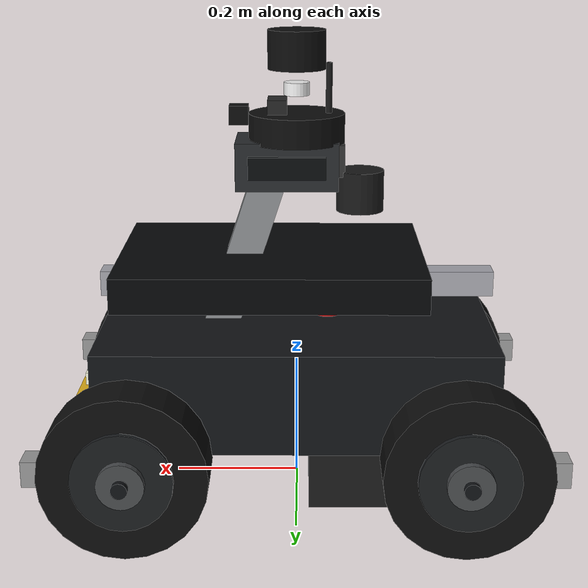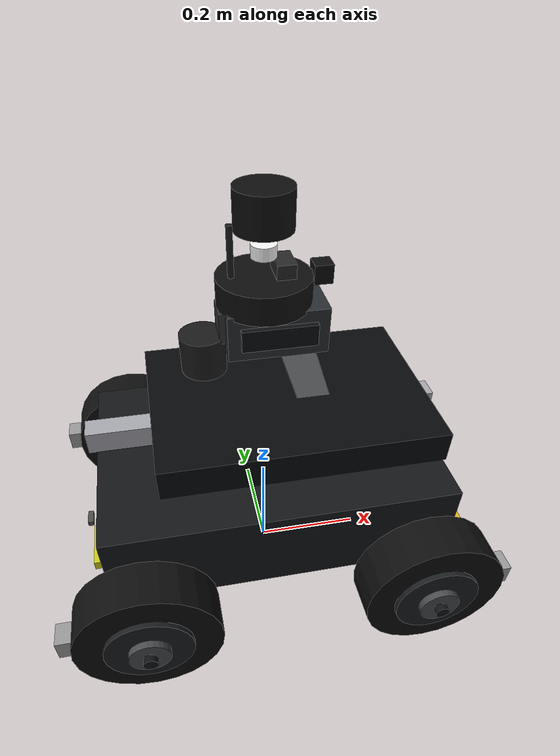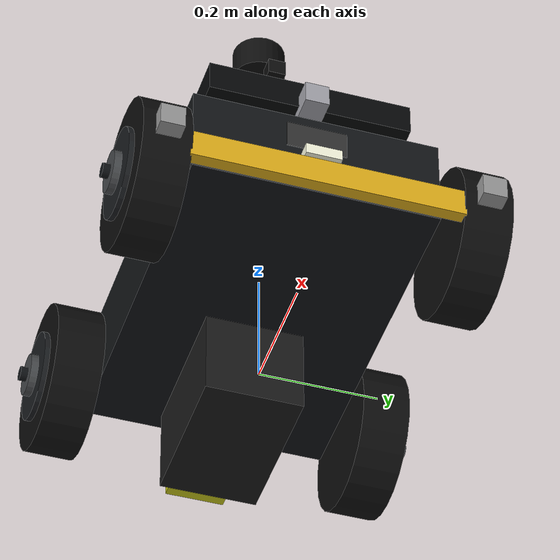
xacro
<?xml version="1.0"?>
<robot name="niihan" xmlns:xacro="http://www.ros.org/wiki/xacro" xmlns:gz="http://gazebosim.org/schema">

  <xacro:arg name="minimal_sensors" default="false"/>
  <xacro:arg name="gnss_mount_x" default="0.0"/>
  <xacro:arg name="gnss_mount_y" default="0.0"/>
  <xacro:arg name="gnss_mount_z" default="0.06"/>

  <xacro:include filename="$(find niihan_description)/urdf/niihan_properties.xacro"/>
  <xacro:include filename="$(find niihan_description)/urdf/niihan_macros.xacro"/>
  <xacro:include filename="$(find niihan_description)/urdf/niihan_chassis.xacro"/>
  <xacro:include filename="$(find niihan_description)/urdf/niihan_mast.xacro"/>
  <xacro:include filename="$(find niihan_description)/urdf/niihan_sensors_mast.xacro"/>
  <xacro:include filename="$(find niihan_description)/urdf/niihan_sensors_chassis.xacro"/>

  <xacro:niihan_mast parent="base_link"/>

  <gazebo>
    <plugin filename="gz-sim-diff-drive-system" name="gz::sim::systems::DiffDrive">
      <left_joint>front_left_wheel_joint</left_joint>
      <left_joint>rear_left_wheel_joint</left_joint>
      <right_joint>front_right_wheel_joint</right_joint>
      <right_joint>rear_right_wheel_joint</right_joint>
      <wheel_separation>${track_width}</wheel_separation>
      <wheel_radius>${wheel_radius}</wheel_radius>
      <max_linear_acceleration>2.0</max_linear_acceleration>
      <min_linear_acceleration>-2.0</min_linear_acceleration>
      <max_angular_acceleration>3.0</max_angular_acceleration>
      <min_angular_acceleration>-3.0</min_angular_acceleration>
      <max_linear_velocity>1.2</max_linear_velocity>
      <min_linear_velocity>-1.5</min_linear_velocity>
      <max_angular_velocity>2.5</max_angular_velocity>
      <min_angular_velocity>-2.5</min_angular_velocity>
      <topic>/niihan/gazebo_cmd_vel</topic>
      <odom_topic>/odom</odom_topic>
      <tf_topic>/tf</tf_topic>
      <frame_id>odom</frame_id>
      <child_frame_id>base_footprint</child_frame_id>
      <odom_publish_frequency>50</odom_publish_frequency>
    </plugin>

    <!-- Evaluation only: world pose, never bridged into the navigation TF tree. -->
    <plugin filename="gz-sim-odometry-publisher-system" name="gz::sim::systems::OdometryPublisher">
      <odom_frame>world</odom_frame><robot_base_frame>ground_truth_base</robot_base_frame>
      <odom_topic>/niihan/ground_truth</odom_topic><tf_topic>/niihan/evaluation_tf</tf_topic>
      <dimensions>3</dimensions><odom_publish_frequency>20</odom_publish_frequency>
    </plugin>

    <!-- Joint state publisher so wheel angles show up on /joint_states -->
    <plugin filename="gz-sim-joint-state-publisher-system" name="gz::sim::systems::JointStatePublisher">
      <topic>/joint_states</topic>
      <joint_name>front_left_wheel_joint</joint_name>
      <joint_name>front_right_wheel_joint</joint_name>
      <joint_name>rear_left_wheel_joint</joint_name>
      <joint_name>rear_right_wheel_joint</joint_name>
      <joint_name>front_left_suspension_joint</joint_name>
      <joint_name>front_right_suspension_joint</joint_name>
      <joint_name>rear_left_suspension_joint</joint_name>
      <joint_name>rear_right_suspension_joint</joint_name>
    </plugin>
  </gazebo>

</robot>

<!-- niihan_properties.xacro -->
<robot xmlns:xacro="http://www.ros.org/wiki/xacro">

  <!-- Overall envelope -->
  <xacro:property name="chassis_length" value="0.700"/> <!-- 700mm -->
  <xacro:property name="chassis_width" value="0.500"/> <!-- 500mm envelope -->
  <xacro:property name="chassis_height" value="0.220"/>
  <xacro:property name="ground_clearance" value="0.200"/> <!-- 200mm -->
  <xacro:property name="wheelbase" value="0.500"/> <!-- 500mm -->
  <xacro:property name="track_width" value="0.525"/> <!-- 525mm -->

  <!-- Suspension -->
  <xacro:property name="suspension_arm_length" value="0.150"/>
  <xacro:property name="suspension_arm_width" value="0.040"/>
  <xacro:property name="suspension_arm_mass" value="1.0"/>

  <!-- Wheels -->
  <xacro:property name="wheel_diameter" value="0.250"/> <!-- Placeholder: confirm with real measurement before build -->
  <xacro:property name="wheel_radius" value="${wheel_diameter/2.0}"/>
  <xacro:property name="wheel_width" value="0.080"/> <!-- Placeholder: confirm with real measurement before build -->
  <xacro:property name="wheel_mass" value="3.5"/>
  <xacro:property name="wheel_effort" value="30.0"/> <!-- N*m, per-wheel drive motor effort limit, placeholder pending motor sign-off -->
  <xacro:property name="wheel_velocity" value="10.0"/> <!-- rad/s, per-wheel max angular velocity, placeholder pending motor sign-off -->

  <!-- Chassis mass distribution -->
  <xacro:property name="chassis_mass" value="10.0"/> <!-- Placeholder residual mass, adjusted for large items below -->
  <xacro:property name="battery_mass" value="14.0"/> <!-- ~13-15kg for 1280Wh LiFePO4 pack -->
  <xacro:property name="battery_size_x" value="0.260"/>
  <xacro:property name="battery_size_y" value="0.165"/>
  <xacro:property name="battery_size_z" value="0.210"/>
  <xacro:property name="front_compute_mass" value="1.5"/> <!-- Jetson, Pi, MCU, IMU, modems -->
  <xacro:property name="power_control_mass" value="2.0"/> <!-- ZLAC drivers, PDU, DC/DC -->

  <!-- Frame -->
  <xacro:property name="extrusion_size" value="0.040"/> <!-- 40x40mm aluminium extrusion -->

  <!-- Sensor mast -->
  <xacro:property name="mast_height" value="0.350"/> <!-- 350mm -->
  <xacro:property name="mast_radius" value="0.030"/>
  <xacro:property name="mast_mass" value="1.5"/>

  <!-- GNSS/RTK: configurable fix-quality / covariance parameter used by the GNSS sensor plugin's gaussian_noise field -->
  <xacro:property name="rtk_fix_std_dev" value="0.02"/> <!-- meters, position std dev in good RTK-fixed state; increase to simulate degraded/lost RTK -->

  <!-- Colors -->
  <material name="niihan_chassis_dark"><color rgba="0.15 0.15 0.16 1.0"/></material>
  <material name="niihan_metal"><color rgba="0.6 0.6 0.65 1.0"/></material>
  <material name="niihan_wheel_black"><color rgba="0.08 0.08 0.08 1.0"/></material>
  <material name="niihan_accent"><color rgba="0.85 0.35 0.05 1.0"/></material>

</robot>

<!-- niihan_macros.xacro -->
<robot xmlns:xacro="http://www.ros.org/wiki/xacro">

  <xacro:macro name="box_inertia" params="mass x y z ox:=0 oy:=0 oz:=0">
    <inertial>
      <origin xyz="${ox} ${oy} ${oz}" rpy="0 0 0"/>
      <mass value="${mass}"/>
      <inertia
        ixx="${(1/12.0)*mass*(y*y+z*z)}" ixy="0.0" ixz="0.0"
        iyy="${(1/12.0)*mass*(x*x+z*z)}" iyz="0.0"
        izz="${(1/12.0)*mass*(x*x+y*y)}"/>
    </inertial>
  </xacro:macro>

  <xacro:macro name="cylinder_inertia" params="mass r h">
    <inertial>
      <mass value="${mass}"/>
      <inertia
        ixx="${(1/12.0)*mass*(3*r*r+h*h)}" ixy="0.0" ixz="0.0"
        iyy="${(1/12.0)*mass*(3*r*r+h*h)}" iyz="0.0"
        izz="${(0.5)*mass*r*r}"/>
    </inertial>
  </xacro:macro>

  <xacro:macro name="sphere_inertia" params="mass r">
    <inertial>
      <mass value="${mass}"/>
      <inertia
        ixx="${(2/5.0)*mass*r*r}" ixy="0.0" ixz="0.0"
        iyy="${(2/5.0)*mass*r*r}" iyz="0.0"
        izz="${(2/5.0)*mass*r*r}"/>
    </inertial>
  </xacro:macro>

</robot>

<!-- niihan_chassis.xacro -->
<robot xmlns:xacro="http://www.ros.org/wiki/xacro">

  <link name="base_footprint"/>

  <joint name="base_footprint_joint" type="fixed">
    <parent link="base_footprint"/>
    <child link="base_link"/>
    <origin xyz="0 0 ${wheel_radius}" rpy="0 0 0"/>
  </joint>

  <link name="base_link">
    <visual>
      <origin xyz="0 0 ${ground_clearance/2 - 0.025}" rpy="0 0 0"/>
      <geometry>
        <box size="${chassis_length*0.88} ${chassis_width*0.82} ${chassis_height*0.72}"/>
      </geometry>
      <material name="niihan_chassis_dark">
        <color rgba="0.07 0.08 0.09 1.0"/>
      </material>
    </visual>
    <collision>
      <origin xyz="0 0 ${ground_clearance/2 - 0.025}" rpy="0 0 0"/>
      <geometry>
        <box size="${chassis_length*0.88} ${chassis_width*0.82} ${chassis_height*0.72}"/>
      </geometry>
    </collision>
    <xacro:box_inertia mass="${chassis_mass}" x="${chassis_length}" y="${chassis_width}" z="${chassis_height}" ox="0" oy="0" oz="${ground_clearance/2 - 0.025}"/>
  </link>

  <gazebo reference="base_link">
    <material>Gazebo/DarkGrey</material>
  </gazebo>

  <link name="upper_deck">
    <visual>
      <origin xyz="0.02 0 0" rpy="0 0 0"/>
      <geometry><box size="0.48 0.34 0.055"/></geometry>
      <material name="upper_deck_black"><color rgba="0.025 0.03 0.035 1.0"/></material>
    </visual>
    <collision>
      <origin xyz="0.02 0 0" rpy="0 0 0"/>
      <geometry><box size="0.48 0.34 0.055"/></geometry>
    </collision>
    <xacro:box_inertia mass="1.0" x="0.48" y="0.34" z="0.055"/>
  </link>
  <joint name="upper_deck_joint" type="fixed">
    <parent link="base_link"/>
    <child link="upper_deck"/>
    <origin xyz="0.02 0 ${ground_clearance + 0.035}" rpy="0 0 0"/>
  </joint>

  <!-- 40x40mm aluminium extrusion frame rails (collision-relevant structural detail) -->
  <xacro:macro name="extrusion_rail" params="name x y z len_axis">
    <link name="${name}">
      <visual>
        <geometry>
          <box size="${len_axis=='x' and chassis_length*0.9 or extrusion_size} ${len_axis=='y' and chassis_width*0.9 or extrusion_size} ${extrusion_size}"/>
        </geometry>
        <material name="${name}_extrusion_silver">
          <color rgba="0.65 0.65 0.68 1.0"/>
        </material>
      </visual>
      <collision>
        <geometry>
          <box size="${len_axis=='x' and chassis_length*0.9 or extrusion_size} ${len_axis=='y' and chassis_width*0.9 or extrusion_size} ${extrusion_size}"/>
        </geometry>
      </collision>
      <xacro:box_inertia mass="0.3" x="${extrusion_size}" y="${extrusion_size}" z="${extrusion_size}"/>
    </link>
    <joint name="${name}_joint" type="fixed">
      <parent link="base_link"/>
      <child link="${name}"/>
      <origin xyz="${x} ${y} ${z}" rpy="0 0 0"/>
    </joint>
  </xacro:macro>

  <xacro:extrusion_rail name="frame_rail_front" x="0" y="0" z="${ground_clearance + 0.01}" len_axis="x"/>

  <xacro:macro name="niihan_suspension" params="prefix side_reflect front_reflect x_off y_off">
    <link name="${prefix}_arm">
      <visual>
        <origin xyz="${-front_reflect * suspension_arm_length/2} 0 0" rpy="0 0 0"/>
        <geometry>
          <box size="${suspension_arm_length} ${suspension_arm_width} ${suspension_arm_width}"/>
        </geometry>
        <material name="${prefix}_metal"><color rgba="0.6 0.6 0.6 1.0"/></material>
      </visual>
      <collision>
        <origin xyz="${-front_reflect * suspension_arm_length/2} 0 0" rpy="0 0 0"/>
        <geometry>
          <box size="${suspension_arm_length} ${suspension_arm_width} ${suspension_arm_width}"/>
        </geometry>
      </collision>
      <xacro:box_inertia mass="${suspension_arm_mass}" x="${suspension_arm_length}" y="${suspension_arm_width}" z="${suspension_arm_width}" ox="${-front_reflect * suspension_arm_length/2}" oy="0" oz="0"/>
    </link>
    <joint name="${prefix}_suspension_joint" type="revolute">
      <parent link="base_link"/>
      <child link="${prefix}_arm"/>
      <origin xyz="${x_off + front_reflect * suspension_arm_length} ${y_off} 0" rpy="0 0 0"/>
      <axis xyz="0 1 0"/>
      <limit lower="-0.4" upper="0.4" effort="100.0" velocity="2.0"/>
      <dynamics damping="50.0" friction="0.5" spring_stiffness="2000.0" spring_reference="0.0"/>
    </joint>
  </xacro:macro>

  <xacro:niihan_suspension prefix="front_left" side_reflect="1" front_reflect="1" x_off="${wheelbase/2}" y_off="${track_width/2}"/>
  <xacro:niihan_suspension prefix="front_right" side_reflect="-1" front_reflect="1" x_off="${wheelbase/2}" y_off="${-track_width/2}"/>
  <xacro:niihan_suspension prefix="rear_left" side_reflect="1" front_reflect="-1" x_off="${-wheelbase/2}" y_off="${track_width/2}"/>
  <xacro:niihan_suspension prefix="rear_right" side_reflect="-1" front_reflect="-1" x_off="${-wheelbase/2}" y_off="${-track_width/2}"/>

  <xacro:macro name="niihan_wheel" params="name parent x_off y_off hub_y hub_offset mu1:=1.0 mu2:=1.0">
    <link name="${name}">
      <visual>
        <origin xyz="0 0 0" rpy="${pi/2} 0 0"/>
        <geometry><cylinder radius="${wheel_radius}" length="${wheel_width}"/></geometry>
        <material name="${name}_rubber_black"><color rgba="0.05 0.05 0.05 1.0"/></material>
      </visual>
      <collision>
        <origin xyz="0 0 0" rpy="${pi/2} 0 0"/>
        <geometry><cylinder radius="${wheel_radius}" length="${wheel_width}"/></geometry>
      </collision>
      <visual>
        <origin xyz="0 ${hub_y} 0" rpy="${pi/2} 0 0"/>
        <geometry><cylinder radius="0.075" length="0.018"/></geometry>
        <material name="${name}_hub_outer"><color rgba="0.10 0.11 0.12 1.0"/></material>
      </visual>
      <visual>
        <origin xyz="0 ${hub_y + hub_offset} 0" rpy="${pi/2} 0 0"/>
        <geometry><cylinder radius="0.035" length="0.022"/></geometry>
        <material name="${name}_hub_center"><color rgba="0.28 0.29 0.30 1.0"/></material>
      </visual>
      <visual>
        <origin xyz="0 ${hub_y + 2*hub_offset} 0" rpy="${pi/2} 0 0"/>
        <geometry><cylinder radius="0.012" length="0.025"/></geometry>
        <material name="${name}_hub_cap"><color rgba="0.06 0.07 0.08 1.0"/></material>
      </visual>
      <xacro:cylinder_inertia mass="${wheel_mass}" r="${wheel_radius}" h="${wheel_width}"/>
    </link>
    <joint name="${name}_joint" type="continuous">
      <parent link="${parent}"/>
      <child link="${name}"/>
      <origin xyz="${x_off} ${y_off} 0" rpy="0 0 0"/>
      <axis xyz="0 1 0"/>
      <dynamics damping="0.2" friction="0.1"/>
      <limit effort="${wheel_effort}" velocity="${wheel_velocity}"/>
    </joint>
    <gazebo reference="${name}">
      <material>Gazebo/Black</material>
      <mu1>${mu1}</mu1>
      <mu2>${mu2}</mu2>
      <fdir1>1 0 0</fdir1>
      <kp>10000000.0</kp>
      <kd>1.0</kd>
      <minDepth>0.001</minDepth>
    </gazebo>
  </xacro:macro>

  <xacro:niihan_wheel name="front_left_wheel"  parent="front_left_arm"  x_off="${-suspension_arm_length}" y_off="0" hub_y="${wheel_width/2}"  hub_offset="0.01" mu1="0.8" mu2="0.8"/>
  <xacro:niihan_wheel name="front_right_wheel" parent="front_right_arm" x_off="${-suspension_arm_length}" y_off="0" hub_y="${-wheel_width/2}" hub_offset="-0.01" mu1="0.8" mu2="0.8"/>
  <xacro:niihan_wheel name="rear_left_wheel"   parent="rear_left_arm"   x_off="${suspension_arm_length}"  y_off="0" hub_y="${wheel_width/2}"  hub_offset="0.01" mu1="0.8" mu2="0.8"/>
  <xacro:niihan_wheel name="rear_right_wheel"  parent="rear_right_arm"  x_off="${suspension_arm_length}"  y_off="0" hub_y="${-wheel_width/2}" hub_offset="-0.01" mu1="0.8" mu2="0.8"/>

  <link name="front_compute_box">
    <visual><geometry><box size="0.12 0.10 0.05"/></geometry><material name="compute_box_mat"><color rgba="0.2 0.2 0.2 1.0"/></material></visual>
    <xacro:box_inertia mass="${front_compute_mass}" x="0.12" y="0.10" z="0.05"/>
  </link>
  <joint name="front_compute_joint" type="fixed">
    <parent link="base_link"/>
    <child link="front_compute_box"/>
    <origin xyz="${chassis_length/2 - 0.1} 0 ${chassis_height/2}" rpy="0 0 0"/>
  </joint>

  <link name="power_control_box">
    <visual><geometry><box size="0.15 0.12 0.06"/></geometry><material name="power_box_mat"><color rgba="0.3 0.3 0.3 1.0"/></material></visual>
    <xacro:box_inertia mass="${power_control_mass}" x="0.15" y="0.12" z="0.06"/>
  </link>
  <joint name="power_control_joint" type="fixed">
    <parent link="base_link"/>
    <child link="power_control_box"/>
    <origin xyz="-0.05 0 ${chassis_height/2}" rpy="0 0 0"/>
  </joint>

  <link name="estop_button">
    <visual><geometry><cylinder radius="0.02" length="0.02"/></geometry><material name="estop_red"><color rgba="0.8 0.1 0.1 1.0"/></material></visual>
  </link>
  <joint name="estop_joint" type="fixed">
    <parent link="power_control_box"/>
    <child link="estop_button"/>
    <origin xyz="0 0 0.04" rpy="0 0 0"/>
  </joint>

  <link name="battery_box">
    <visual><geometry><box size="${battery_size_x} ${battery_size_y} ${battery_size_z}"/></geometry><material name="battery_mat"><color rgba="0.1 0.1 0.1 1.0"/></material></visual>
    <xacro:box_inertia mass="${battery_mass}" x="${battery_size_x}" y="${battery_size_y}" z="${battery_size_z}"/>
  </link>
  <joint name="battery_joint" type="fixed">
    <parent link="base_link"/>
    <child link="battery_box"/>
    <!-- Place battery low and rear -->
    <origin xyz="-0.15 0 -0.05" rpy="0 0 0"/>
  </joint>

  <link name="access_panel">
    <visual><geometry><box size="0.30 0.20 0.01"/></geometry><material name="panel_mat"><color rgba="0.4 0.4 0.4 1.0"/></material></visual>
  </link>
  <joint name="access_panel_joint" type="fixed">
    <parent link="base_link"/>
    <child link="access_panel"/>
    <origin xyz="0 0 ${chassis_height/2 + 0.005}" rpy="0 0 0"/>
  </joint>

  <link name="rear_dock_contacts">
    <visual><geometry><box size="0.02 0.1 0.02"/></geometry><material name="contacts_mat"><color rgba="0.8 0.8 0.1 1.0"/></material></visual>
  </link>
  <joint name="rear_dock_joint" type="fixed">
    <parent link="base_link"/>
    <child link="rear_dock_contacts"/>
    <origin xyz="${-chassis_length/2} 0 ${-chassis_height/2 + 0.02}" rpy="0 0 0"/>
  </joint>

</robot>

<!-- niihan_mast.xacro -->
<robot xmlns:xacro="http://www.ros.org/wiki/xacro">

  <xacro:macro name="niihan_mast" params="parent">

    <joint name="mast_joint" type="fixed">
      <parent link="${parent}"/>
      <child link="mast_link"/>
      <origin xyz="0 0 ${chassis_height/2}" rpy="0 0 0"/>
    </joint>

    <link name="mast_link">
      <visual>
        <origin xyz="0.075 0 ${mast_height/2}" rpy="0 -0.32 0"/>
        <geometry>
          <box size="0.055 0.055 ${mast_height}"/>
        </geometry>
        <material name="mast_dark_grey">
          <color rgba="0.55 0.56 0.57 1.0"/>
        </material>
      </visual>
      <collision>
        <origin xyz="0.075 0 ${mast_height/2}" rpy="0 -0.32 0"/>
        <geometry>
          <box size="0.055 0.055 ${mast_height}"/>
        </geometry>
      </collision>
      <xacro:box_inertia mass="0.8" x="0.055" y="0.055" z="${mast_height}"/>
    </link>

    <gazebo reference="mast_link">
      <material>Gazebo/DarkGrey</material>
    </gazebo>

    <!-- Mount frame at mast top: the single forward camera and LiDAR share the head plate -->
    <joint name="mast_head_joint" type="fixed">
      <parent link="mast_link"/>
      <child link="mast_head_link"/>
      <origin xyz="0 0 ${mast_height}" rpy="0 0 0"/>
    </joint>

    <link name="mast_head_link">
      <visual>
        <geometry>
          <cylinder radius="0.075" length="0.045"/>
        </geometry>
        <material name="mast_head_black">
          <color rgba="0.05 0.05 0.05 1.0"/>
        </material>
      </visual>
      <visual>
        <origin xyz="0.015 0 -0.055" rpy="0 0 0"/>
        <geometry><box size="0.16 0.10 0.075"/></geometry>
        <material name="mast_camera_bar"><color rgba="0.16 0.17 0.18 1.0"/></material>
      </visual>
      <visual>
        <origin xyz="0.015 0 -0.055" rpy="0 0 0"/>
        <geometry><box size="0.12 0.12 0.035"/></geometry>
        <material name="mast_camera_face"><color rgba="0.04 0.05 0.055 1.0"/></material>
      </visual>
      <collision>
        <geometry>
          <cylinder radius="0.06" length="0.02"/>
        </geometry>
      </collision>
      <xacro:cylinder_inertia mass="0.3" r="0.06" h="0.02"/>
    </link>

    <gazebo reference="mast_head_link">
      <material>Gazebo/Black</material>
    </gazebo>

  </xacro:macro>

</robot>

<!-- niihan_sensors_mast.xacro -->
<robot xmlns:xacro="http://www.ros.org/wiki/xacro" xmlns:gz="http://gazebosim.org/schema">

  <!-- ============ Single forward RGB camera ============ -->
  <xacro:macro name="niihan_ring_camera" params="suffix yaw_deg">
    <link name="camera_${suffix}_link">
      <visual>
        <geometry><box size="0.03 0.03 0.03"/></geometry>
        <material name="camera_${suffix}_black"><color rgba="0.05 0.05 0.05 1"/></material>
      </visual>
      <collision><geometry><box size="0.03 0.03 0.03"/></geometry></collision>
      <xacro:box_inertia mass="0.05" x="0.03" y="0.03" z="0.03"/>
    </link>
    <joint name="camera_${suffix}_joint" type="fixed">
      <parent link="mast_head_link"/>
      <child link="camera_${suffix}_link"/>
      <origin xyz="0.09 0 0.02" rpy="0 0 ${yaw_deg * pi / 180.0}"/>
    </joint>
    <xacro:if value="${suffix == 'front' or xacro.arg('minimal_sensors') == 'false'}">
<gazebo reference="camera_${suffix}_link">
      <sensor type="camera" name="camera_${suffix}_sensor">
        <pose>0 0 0 0 0 0</pose>
        <always_on>1</always_on>
        <update_rate>15.0</update_rate>
        <topic>/niihan/sensors/panoramic/${suffix}/image_raw</topic>
        <gz:frame_id>camera_${suffix}_link</gz:frame_id>
        <camera name="${suffix}">
          <horizontal_fov>1.57</horizontal_fov>
          <image><width>640</width><height>480</height><format>R8G8B8</format></image>
          <clip><near>0.05</near><far>50</far></clip>
        </camera>
      </sensor>
    </gazebo>
</xacro:if>
  </xacro:macro>

  <xacro:niihan_ring_camera suffix="front" yaw_deg="0"/>
  <link name="camera_front_optical_frame"/>
  <joint name="camera_front_optical_joint" type="fixed">
    <parent link="camera_front_link"/><child link="camera_front_optical_frame"/>
    <origin xyz="0 0 0" rpy="-${pi/2} 0 -${pi/2}"/>
  </joint>

  <!-- ============ 3D 360 LiDAR (SLAM/localisation + obstacle detection) ============ -->
  <link name="mast_lidar_link">
    <visual><geometry><cylinder radius="0.045" length="0.06"/></geometry>
      <material name="lidar_link_black"><color rgba="0.05 0.05 0.05 1"/></material></visual>
    <collision><geometry><cylinder radius="0.045" length="0.06"/></geometry></collision>
    <xacro:cylinder_inertia mass="0.25" r="0.045" h="0.06"/>
  </link>
  <joint name="mast_lidar_joint" type="fixed">
    <parent link="mast_head_link"/>
    <child link="mast_lidar_link"/>
    <origin xyz="0 0 0.12" rpy="0 0 0"/>
  </joint>
  <xacro:unless value="$(arg minimal_sensors)">
<gazebo reference="mast_lidar_link">
    <sensor type="gpu_lidar" name="lidar_3d_sensor">
      <always_on>1</always_on>
      <update_rate>10.0</update_rate>
      <topic>/niihan/sensors/lidar</topic>
      <gz:frame_id>mast_lidar_link</gz:frame_id>
      <lidar>
        <scan>
          <horizontal><samples>360</samples><resolution>1</resolution><min_angle>-3.14159</min_angle><max_angle>3.14159</max_angle></horizontal>
          <vertical><samples>64</samples><resolution>1</resolution><min_angle>-0.12217</min_angle><max_angle>0.90757</max_angle></vertical>
        </scan>
        <range><min>0.2</min><max>60.0</max><resolution>0.01</resolution></range>
        <noise>
          <type>gaussian</type>
          <mean>0.0</mean>
          <stddev>0.01</stddev>
        </noise>
      </lidar>
    </sensor>
  </gazebo>
</xacro:unless>

  <!-- ============ REAR SENSOR CLUSTER ============ -->
  <link name="antenna_link">
    <visual>
      <geometry><cylinder radius="0.005" length="0.2"/></geometry>
      <material name="antenna_mat"><color rgba="0.1 0.1 0.1 1.0"/></material>
    </visual>
  </link>
  <joint name="antenna_joint" type="fixed">
    <parent link="mast_link"/>
    <child link="antenna_link"/>
    <origin xyz="-0.05 0 ${mast_height}" rpy="0 0 0"/>
  </joint>

  <link name="speaker_link">
    <visual>
      <geometry><box size="0.05 0.05 0.05"/></geometry>
      <material name="speaker_mat"><color rgba="0.2 0.2 0.2 1.0"/></material>
    </visual>
  </link>
  <joint name="speaker_joint" type="fixed">
    <parent link="mast_link"/>
    <child link="speaker_link"/>
    <origin xyz="-0.05 0 ${mast_height - 0.05}" rpy="0 0 0"/>
  </joint>

  <link name="unitree_l2_link">
    <visual>
      <geometry><cylinder radius="0.0375" length="0.065"/></geometry>
      <material name="unitree_mat"><color rgba="0.1 0.1 0.1 1.0"/></material>
    </visual>
    <collision>
      <geometry><cylinder radius="0.0375" length="0.065"/></geometry>
    </collision>
    <xacro:cylinder_inertia mass="0.23" r="0.0375" h="0.065"/>
  </link>
  <joint name="unitree_l2_joint" type="fixed">
    <parent link="mast_link"/>
    <child link="unitree_l2_link"/>
    <origin xyz="-0.1 0 ${mast_height - 0.1}" rpy="0 0 0"/>
  </joint>
  <gazebo reference="unitree_l2_link">
    <sensor type="gpu_lidar" name="unitree_l2_sensor">
      <always_on>1</always_on>
      <update_rate>10.0</update_rate>
      <topic>/niihan/sensors/unitree_lidar</topic>
      <gz:frame_id>unitree_l2_link</gz:frame_id>
      <lidar>
        <scan>
          <horizontal>
            <samples>${360 if xacro.arg('minimal_sensors') == 'true' else 560}</samples>
            <resolution>1</resolution>
            <min_angle>-3.14159</min_angle>
            <max_angle>3.14159</max_angle>
          </horizontal>
          <vertical>
            <samples>${32 if xacro.arg('minimal_sensors') == 'true' else 140}</samples>
            <resolution>1</resolution>
            <min_angle>-0.12217</min_angle>
            <max_angle>1.5708</max_angle>
          </vertical>
        </scan>
        <range><min>0.05</min><max>30.0</max><resolution>0.0045</resolution></range>
      </lidar>
    </sensor>
  </gazebo>

</robot>

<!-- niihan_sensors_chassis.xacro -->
<robot xmlns:xacro="http://www.ros.org/wiki/xacro" xmlns:gz="http://gazebosim.org/schema">

  <!-- GNSS + RTK: publishes sensor_msgs/NavSatFix -->
  <link name="gnss_link">
    <inertial>
      <mass value="0.05"/>
      <origin xyz="0 0 0" rpy="0 0 0"/>
      <inertia ixx="0.00001" iyy="0.00001" izz="0.00001" ixy="0" ixz="0" iyz="0"/>
    </inertial>
    <visual>
      <geometry><cylinder radius="0.02" length="0.02"/></geometry>
      <material name="niihan_gnss_white"><color rgba="0.95 0.95 0.95 1"/></material>
    </visual>
    <collision>
      <geometry><cylinder radius="0.02" length="0.02"/></geometry>
    </collision>
  </link>
  <joint name="gnss_joint" type="fixed">
    <parent link="mast_head_link"/>
    <child link="gnss_link"/>
    <origin xyz="$(arg gnss_mount_x) $(arg gnss_mount_y) $(arg gnss_mount_z)" rpy="0 0 0"/>
  </joint>
  <!-- Antenna is present in the minimal L2 + single-camera profile too. -->
<gazebo reference="gnss_link">
    <sensor name="gnss_sensor" type="navsat">
      <always_on>true</always_on>
      <update_rate>10</update_rate>
      <topic>/niihan/gnss/fix</topic>
      <gz:frame_id>gnss_link</gz:frame_id>
    </sensor>
  </gazebo>

  <!-- 2D LiDAR: publishes sensor_msgs/LaserScan on /scan for navigation/obstacle detection -->
  <link name="chassis_lidar_link">
    <inertial>
      <mass value="0.1"/>
      <origin xyz="0 0 0" rpy="0 0 0"/>
      <inertia ixx="0.0001" iyy="0.0001" izz="0.0001" ixy="0" ixz="0" iyz="0"/>
    </inertial>
    <visual>
      <geometry><cylinder radius="0.04" length="0.04"/></geometry>
      <material name="niihan_lidar_black"><color rgba="0.1 0.1 0.1 1"/></material>
    </visual>
    <collision>
      <geometry><cylinder radius="0.04" length="0.04"/></geometry>
    </collision>
  </link>
  <joint name="lidar_joint" type="fixed">
    <parent link="base_link"/>
    <child link="chassis_lidar_link"/>
    <origin xyz="0 0 0.22" rpy="0 0 0"/>
  </joint>
  <xacro:unless value="$(arg minimal_sensors)">
<gazebo reference="chassis_lidar_link">
    <sensor name="lidar_sensor" type="gpu_lidar">
      <always_on>true</always_on>
      <update_rate>10</update_rate>
      <visualize>false</visualize>
      <topic>/scan</topic>
      <gz:frame_id>chassis_lidar_link</gz:frame_id>
      <lidar>
        <scan>
          <horizontal>
            <samples>360</samples>
            <resolution>1</resolution>
            <min_angle>-3.14159</min_angle>
            <max_angle>3.14159</max_angle>
          </horizontal>
        </scan>
        <range><min>0.12</min><max>12.0</max><resolution>0.01</resolution></range>
      </lidar>
    </sensor>
  </gazebo>
</xacro:unless>

  <!-- IMU -->
  <link name="imu_link">
    <inertial>
      <mass value="0.03"/>
      <origin xyz="0 0 0" rpy="0 0 0"/>
      <inertia ixx="0.000005" iyy="0.000005" izz="0.000005" ixy="0" ixz="0" iyz="0"/>
    </inertial>
    <visual>
      <geometry><box size="0.02 0.02 0.01"/></geometry>
      <material name="niihan_imu_black"><color rgba="0.1 0.1 0.1 1"/></material>
    </visual>
    <collision>
      <geometry><box size="0.02 0.02 0.01"/></geometry>
    </collision>
  </link>
  <joint name="imu_joint" type="fixed">
    <parent link="base_link"/>
    <child link="imu_link"/>
    <origin xyz="0 0 0.02" rpy="0 0 0"/>
  </joint>
  <gazebo reference="imu_link">
    <sensor name="imu_sensor" type="imu">
      <always_on>true</always_on>
      <update_rate>100</update_rate>
      <topic>/niihan/imu/data</topic>
      <gz:frame_id>imu_link</gz:frame_id>
    </sensor>
  </gazebo>

  <!-- Front proximity sensor (ultrasonic/ToF placeholder using ray sensor) -->
  <link name="prox_front_link">
    <inertial>
      <mass value="0.01"/>
      <origin xyz="0 0 0" rpy="0 0 0"/>
      <inertia ixx="0.000001" iyy="0.000001" izz="0.000001" ixy="0" ixz="0" iyz="0"/>
    </inertial>
    <visual>
      <geometry><box size="0.01 0.03 0.01"/></geometry>
      <material name="niihan_prox_front_grey"><color rgba="0.3 0.3 0.3 1"/></material>
    </visual>
    <collision>
      <geometry><box size="0.01 0.03 0.01"/></geometry>
    </collision>
  </link>
  <joint name="prox_front_joint" type="fixed">
    <parent link="base_link"/>
    <child link="prox_front_link"/>
    <origin xyz="${chassis_length/2} 0 0" rpy="0 0 0"/>
  </joint>
  <xacro:unless value="$(arg minimal_sensors)">
<gazebo reference="prox_front_link">
    <sensor name="prox_front_sensor" type="gpu_lidar">
      <always_on>true</always_on>
      <update_rate>10</update_rate>
      <topic>/niihan/proximity/front_range</topic>
      <gz:frame_id>prox_front_link</gz:frame_id>
      <lidar>
        <scan><horizontal><samples>1</samples><resolution>1</resolution><min_angle>0</min_angle><max_angle>0</max_angle></horizontal></scan>
        <range><min>0.02</min><max>3.0</max><resolution>0.01</resolution></range>
      </lidar>
    </sensor>
  </gazebo>
</xacro:unless>

  <!-- Rear proximity sensor -->
  <link name="prox_rear_link">
    <inertial>
      <mass value="0.01"/>
      <origin xyz="0 0 0" rpy="0 0 0"/>
      <inertia ixx="0.000001" iyy="0.000001" izz="0.000001" ixy="0" ixz="0" iyz="0"/>
    </inertial>
    <visual>
      <geometry><box size="0.01 0.03 0.01"/></geometry>
      <material name="niihan_prox_rear_grey"><color rgba="0.3 0.3 0.3 1"/></material>
    </visual>
    <collision>
      <geometry><box size="0.01 0.03 0.01"/></geometry>
    </collision>
  </link>
  <joint name="prox_rear_joint" type="fixed">
    <parent link="base_link"/>
    <child link="prox_rear_link"/>
    <origin xyz="${-chassis_length/2} 0 0" rpy="0 0 3.14159"/>
  </joint>
  <xacro:unless value="$(arg minimal_sensors)">
<gazebo reference="prox_rear_link">
    <sensor name="prox_rear_sensor" type="gpu_lidar">
      <always_on>true</always_on>
      <update_rate>10</update_rate>
      <topic>/niihan/proximity/rear_range</topic>
      <gz:frame_id>prox_rear_link</gz:frame_id>
      <lidar>
        <scan><horizontal><samples>1</samples><resolution>1</resolution><min_angle>0</min_angle><max_angle>0</max_angle></horizontal></scan>
        <range><min>0.02</min><max>3.0</max><resolution>0.01</resolution></range>
      </lidar>
    </sensor>
  </gazebo>
</xacro:unless>

  <!-- Contact bumper (front) -->
  <link name="bumper_link">
    <inertial>
      <mass value="0.05"/>
      <origin xyz="0 0 0" rpy="0 0 0"/>
      <inertia ixx="0.00001" iyy="0.00001" izz="0.00001" ixy="0" ixz="0" iyz="0"/>
    </inertial>
    <visual>
      <geometry><box size="0.02 ${chassis_width*0.9} 0.05"/></geometry>
      <material name="niihan_bumper_yellow"><color rgba="0.9 0.7 0.1 1"/></material>
    </visual>
    <collision>
      <geometry><box size="0.02 ${chassis_width*0.9} 0.05"/></geometry>
    </collision>
  </link>
  <joint name="bumper_joint" type="fixed">
    <parent link="base_link"/>
    <child link="bumper_link"/>
    <origin xyz="${chassis_length/2 + 0.01} 0 -0.02" rpy="0 0 0"/>
  </joint>
  <xacro:unless value="$(arg minimal_sensors)">
<gazebo reference="bumper_link">
    <sensor name="bumper_sensor" type="contact">
      <always_on>true</always_on>
      <update_rate>30</update_rate>
      <contact><collision>bumper_link_collision</collision></contact>
      <topic>/niihan/bumper/contact</topic>
      <gz:frame_id>bumper_link</gz:frame_id>
    </sensor>
  </gazebo>
</xacro:unless>

  <!-- Forward work light (fixed white) -->
  <link name="work_light_link">
    <inertial>
      <mass value="0.02"/>
      <origin xyz="0 0 0" rpy="0 0 0"/>
      <inertia ixx="0.000001" iyy="0.000001" izz="0.000001" ixy="0" ixz="0" iyz="0"/>
    </inertial>
    <visual>
      <geometry><box size="0.03 0.06 0.02"/></geometry>
      <material name="niihan_work_light_white"><color rgba="1 1 0.9 1"/></material>
    </visual>
    <collision>
      <geometry><box size="0.03 0.06 0.02"/></geometry>
    </collision>
  </link>
  <joint name="work_light_joint" type="fixed">
    <parent link="base_link"/>
    <child link="work_light_link"/>
    <origin xyz="${chassis_length/2 - 0.02} 0 0.05" rpy="0 0 0"/>
  </joint>
  <gazebo reference="work_light_link">
    <light name="work_light" type="spot">
      <cast_shadows>false</cast_shadows>
      <diffuse>1 1 0.9 1</diffuse>
      <specular>0.2 0.2 0.2 1</specular>
      <attenuation><range>15</range><constant>0.5</constant><linear>0.05</linear><quadratic>0.0</quadratic></attenuation>
      <direction>1 0 0</direction>
      <spot><inner_angle>0.5</inner_angle><outer_angle>0.9</outer_angle><falloff>1.0</falloff></spot>
    </light>
  </gazebo>

  <!-- Controllable flood/spot/IR light -->
  <link name="flood_light_link">
    <inertial>
      <mass value="0.02"/>
      <origin xyz="0 0 0" rpy="0 0 0"/>
      <inertia ixx="0.000001" iyy="0.000001" izz="0.000001" ixy="0" ixz="0" iyz="0"/>
    </inertial>
    <visual>
      <geometry><box size="0.03 0.05 0.03"/></geometry>
      <material name="niihan_flood_light_dark"><color rgba="0.15 0.15 0.15 1"/></material>
    </visual>
    <collision>
      <geometry><box size="0.03 0.05 0.03"/></geometry>
    </collision>
  </link>
  <joint name="flood_light_joint" type="fixed">
    <parent link="mast_head_link"/>
    <child link="flood_light_link"/>
    <origin xyz="0.03 0 0.03" rpy="0 0 0"/>
  </joint>
  <gazebo reference="flood_light_link">
    <light name="flood_light" type="spot">
      <cast_shadows>false</cast_shadows>
      <diffuse>1 1 1 1</diffuse>
      <specular>0.3 0.3 0.3 1</specular>
      <attenuation><range>25</range><constant>0.3</constant><linear>0.03</linear><quadratic>0.0</quadratic></attenuation>
      <direction>1 0 0</direction>
      <spot><inner_angle>0.6</inner_angle><outer_angle>1.2</outer_angle><falloff>1.0</falloff></spot>
    </light>
  </gazebo>

</robot>
